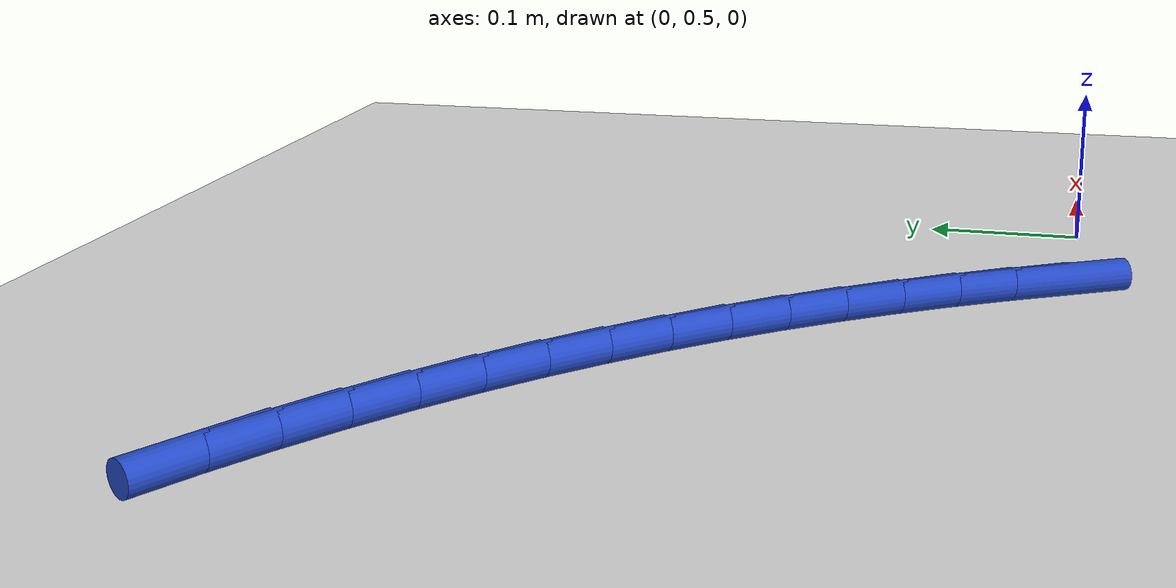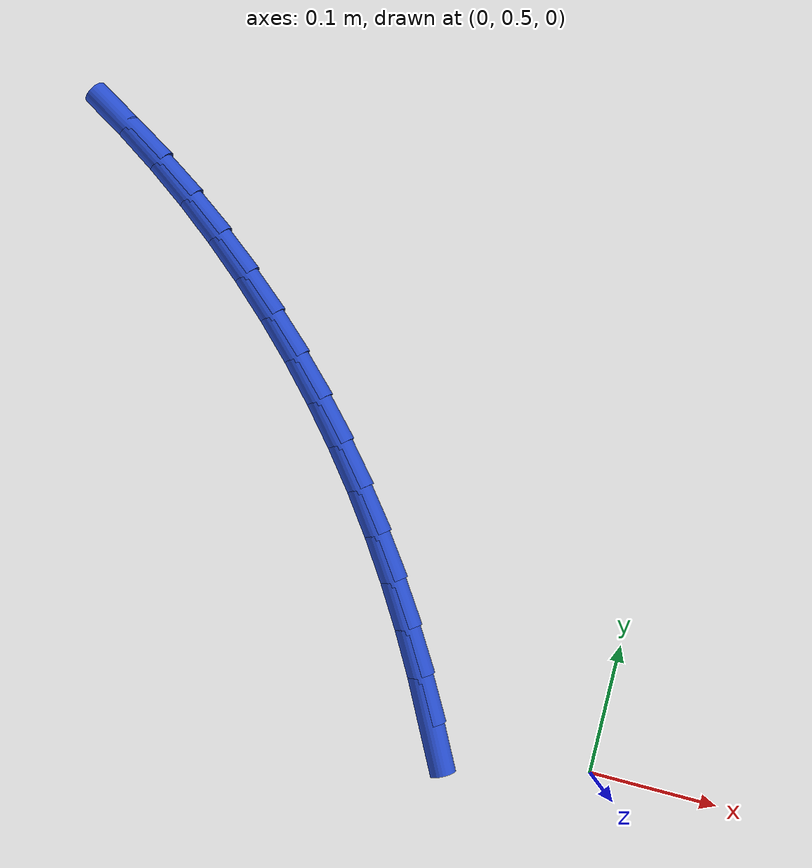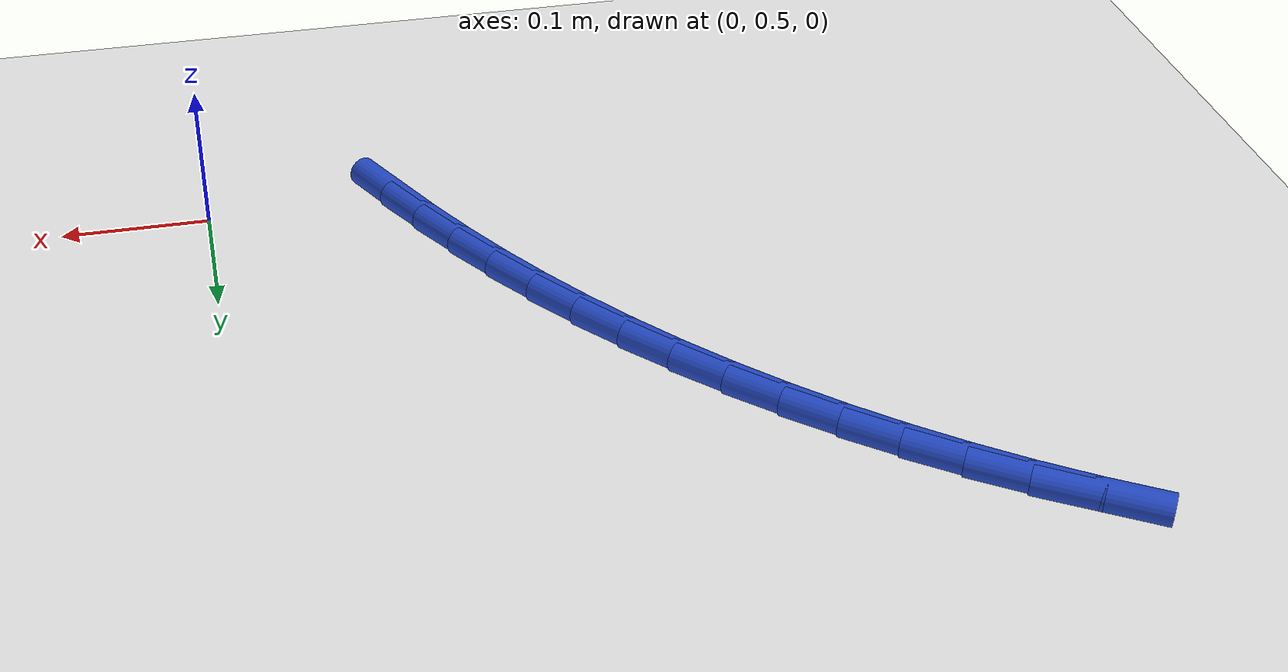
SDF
<sdf version="1.6">
 <world name="default">
  <model name="ground_plane">
   <static>1</static>
   <link name="link">
    <collision name="collision">
     <geometry><plane><normal>0 0 1</normal><size>100 100</size></plane></geometry>
     <surface><friction><ode><mu>100</mu><mu2>50</mu2></ode></friction></surface>
    </collision>
    <visual name="visual">
     <cast_shadows>0</cast_shadows>
     <geometry><plane><normal>0 0 1</normal><size>100 100</size></plane></geometry>
     <material>
      <script><uri>file://media/materials/scripts/gazebo.material</uri><name>Gazebo/WhiteGlow</name></script>
     </material>
    </visual>
   </link>
  </model>
  <model name="line">
   <link name="link_14">
    <pose>-0.12879345550259177 0.5077682385680489 0.01 0 1.57 -1.0877518998510558</pose>
    <collision name="collision">
     <geometry><cylinder><radius>0.01</radius><length>0.08</length></cylinder></geometry>
    </collision>
    <visual name="visual">
     <material>
      <script><name>Gazebo/Blue</name><uri>file://media/materials/scripts/gazebo.material</uri></script>
     </material>
     <geometry><cylinder><radius>0.01</radius><length>0.08</length></cylinder></geometry>
    </visual>
   </link>
   <link name="link_15">
    <pose>-0.14629427702155862 0.5411357686036876 0.01 0 1.57 -1.0533925577513896</pose>
    <collision name="collision">
     <geometry><cylinder><radius>0.01</radius><length>0.08</length></cylinder></geometry>
    </collision>
    <visual name="visual">
     <material>
      <script><name>Gazebo/Blue</name><uri>file://media/materials/scripts/gazebo.material</uri></script>
     </material>
     <geometry><cylinder><radius>0.01</radius><length>0.08</length></cylinder></geometry>
    </visual>
   </link>
   <link name="link_16">
    <pose>-0.16492810645681089 0.5738772690560279 0.01 0 1.57 -1.0178526163214985</pose>
    <collision name="collision">
     <geometry><cylinder><radius>0.01</radius><length>0.08</length></cylinder></geometry>
    </collision>
    <visual name="visual">
     <material>
      <script><name>Gazebo/Blue</name><uri>file://media/materials/scripts/gazebo.material</uri></script>
     </material>
     <geometry><cylinder><radius>0.01</radius><length>0.08</length></cylinder></geometry>
    </visual>
   </link>
   <link name="link_17">
    <pose>-0.1847212670050968 0.6059484839065186 0.01 0 1.57 -0.9811536308472887</pose>
    <collision name="collision">
     <geometry><cylinder><radius>0.01</radius><length>0.08</length></cylinder></geometry>
    </collision>
    <visual name="visual">
     <material>
      <script><name>Gazebo/Blue</name><uri>file://media/materials/scripts/gazebo.material</uri></script>
     </material>
     <geometry><cylinder><radius>0.01</radius><length>0.08</length></cylinder></geometry>
    </visual>
   </link>
   <link name="link_18">
    <pose>-0.2057000818631647 0.6373051571366083 0.01 0 1.57 -0.9433310739540354</pose>
    <collision name="collision">
     <geometry><cylinder><radius>0.01</radius><length>0.08</length></cylinder></geometry>
    </collision>
    <visual name="visual">
     <material>
      <script><name>Gazebo/Blue</name><uri>file://media/materials/scripts/gazebo.material</uri></script>
     </material>
     <geometry><cylinder><radius>0.01</radius><length>0.08</length></cylinder></geometry>
    </visual>
   </link>
   <link name="link_19">
    <pose>-0.22789087422776277 0.6679030327277459 0.01 0 1.57 -0.9044359164735142</pose>
    <collision name="collision">
     <geometry><cylinder><radius>0.01</radius><length>0.08</length></cylinder></geometry>
    </collision>
    <visual name="visual">
     <material>
      <script><name>Gazebo/Blue</name><uri>file://media/materials/scripts/gazebo.material</uri></script>
     </material>
     <geometry><cylinder><radius>0.01</radius><length>0.08</length></cylinder></geometry>
    </visual>
   </link>
   <link name="link_20">
    <pose>-0.2513199418789945 0.6976978477420025 0.01 0 1.57 -0.8648703252236555</pose>
    <collision name="collision">
     <geometry><cylinder><radius>0.01</radius><length>0.08</length></cylinder></geometry>
    </collision>
    <visual name="visual">
     <material>
      <script><name>Gazebo/Blue</name><uri>file://media/materials/scripts/gazebo.material</uri></script>
     </material>
     <geometry><cylinder><radius>0.01</radius><length>0.08</length></cylinder></geometry>
    </visual>
   </link>
   <link name="link_21">
    <pose>-0.2759917229875353 0.7266393882241484 0.01 0 1.57 -0.8255422555683686</pose>
    <collision name="collision">
     <geometry><cylinder><radius>0.01</radius><length>0.08</length></cylinder></geometry>
    </collision>
    <visual name="visual">
     <material>
      <script><name>Gazebo/Blue</name><uri>file://media/materials/scripts/gazebo.material</uri></script>
     </material>
     <geometry><cylinder><radius>0.01</radius><length>0.08</length></cylinder></geometry>
    </visual>
   </link>
   <link name="link_22">
    <pose>-0.30184889996766184 0.7546606279526599 0.01 0 1.57 -0.786445059237418</pose>
    <collision name="collision">
     <geometry><cylinder><radius>0.01</radius><length>0.08</length></cylinder></geometry>
    </collision>
    <visual name="visual">
     <material>
      <script><name>Gazebo/Blue</name><uri>file://media/materials/scripts/gazebo.material</uri></script>
     </material>
     <geometry><cylinder><radius>0.01</radius><length>0.08</length></cylinder></geometry>
    </visual>
   </link>
   <link name="link_23">
    <pose>-0.3288233267573326 0.7816915927828084 0.01 0 1.57 -0.747397326956661</pose>
    <collision name="collision">
     <geometry><cylinder><radius>0.01</radius><length>0.08</length></cylinder></geometry>
    </collision>
    <visual name="visual">
     <material>
      <script><name>Gazebo/Blue</name><uri>file://media/materials/scripts/gazebo.material</uri></script>
     </material>
     <geometry><cylinder><radius>0.01</radius><length>0.08</length></cylinder></geometry>
    </visual>
   </link>
   <link name="link_24">
    <pose>-0.3568468572945061 0.8076623085698642 0.01 0 1.57 -0.7082187413780048</pose>
    <collision name="collision">
     <geometry><cylinder><radius>0.01</radius><length>0.08</length></cylinder></geometry>
    </collision>
    <visual name="visual">
     <material>
      <script><name>Gazebo/Blue</name><uri>file://media/materials/scripts/gazebo.material</uri></script>
     </material>
     <geometry><cylinder><radius>0.01</radius><length>0.08</length></cylinder></geometry>
    </visual>
   </link>
   <link name="link_25">
    <pose>-0.3858513455171411 0.8325028011690981 0.01 0 1.57 -0.6687293947517815</pose>
    <collision name="collision">
     <geometry><cylinder><radius>0.01</radius><length>0.08</length></cylinder></geometry>
    </collision>
    <visual name="visual">
     <material>
      <script><name>Gazebo/Blue</name><uri>file://media/materials/scripts/gazebo.material</uri></script>
     </material>
     <geometry><cylinder><radius>0.01</radius><length>0.08</length></cylinder></geometry>
    </visual>
   </link>
   <link name="link_26">
    <pose>-0.41576864536319624 0.8561430964357809 0.01 0 1.57 -0.6287491965845003</pose>
    <collision name="collision">
     <geometry><cylinder><radius>0.01</radius><length>0.08</length></cylinder></geometry>
    </collision>
    <visual name="visual">
     <material>
      <script><name>Gazebo/Blue</name><uri>file://media/materials/scripts/gazebo.material</uri></script>
     </material>
     <geometry><cylinder><radius>0.01</radius><length>0.08</length></cylinder></geometry>
    </visual>
   </link>
   <link name="link_27">
    <pose>-0.4465306107706297 0.8785132202251827 0.01 0 1.57 -0.5880974610533554</pose>
    <collision name="collision">
     <geometry><cylinder><radius>0.01</radius><length>0.08</length></cylinder></geometry>
    </collision>
    <visual name="visual">
     <material>
      <script><name>Gazebo/Blue</name><uri>file://media/materials/scripts/gazebo.material</uri></script>
     </material>
     <geometry><cylinder><radius>0.01</radius><length>0.08</length></cylinder></geometry>
    </visual>
   </link>
   <link name="link_28">
    <pose>-0.4780690956774006 0.8995431983925747 0.01 0 1.57 -0.5465927741109644</pose>
    <collision name="collision">
     <geometry><cylinder><radius>0.01</radius><length>0.08</length></cylinder></geometry>
    </collision>
    <visual name="visual">
     <material>
      <script><name>Gazebo/Blue</name><uri>file://media/materials/scripts/gazebo.material</uri></script>
     </material>
     <geometry><cylinder><radius>0.01</radius><length>0.08</length></cylinder></geometry>
    </visual>
   </link>
  </model>
 </world>
</sdf>
